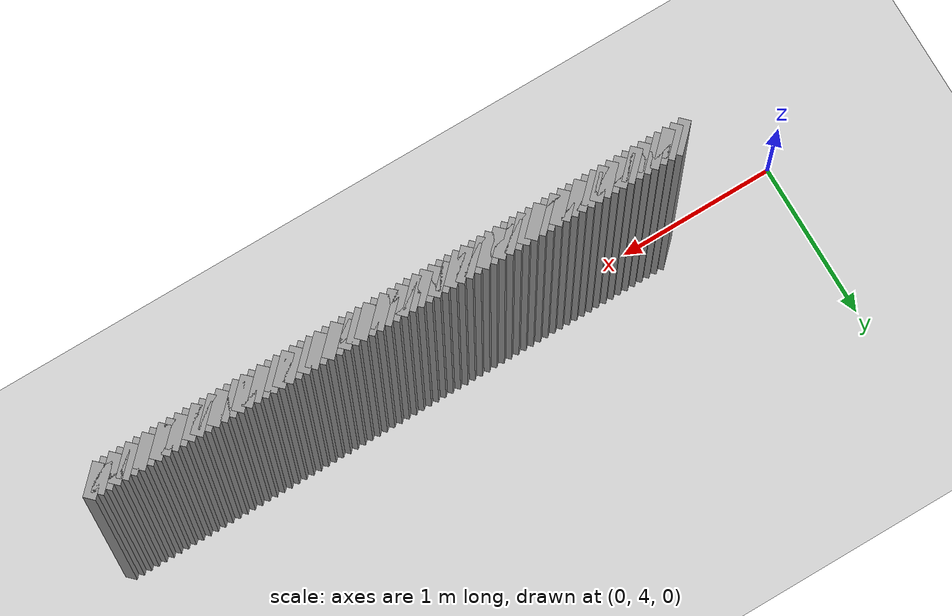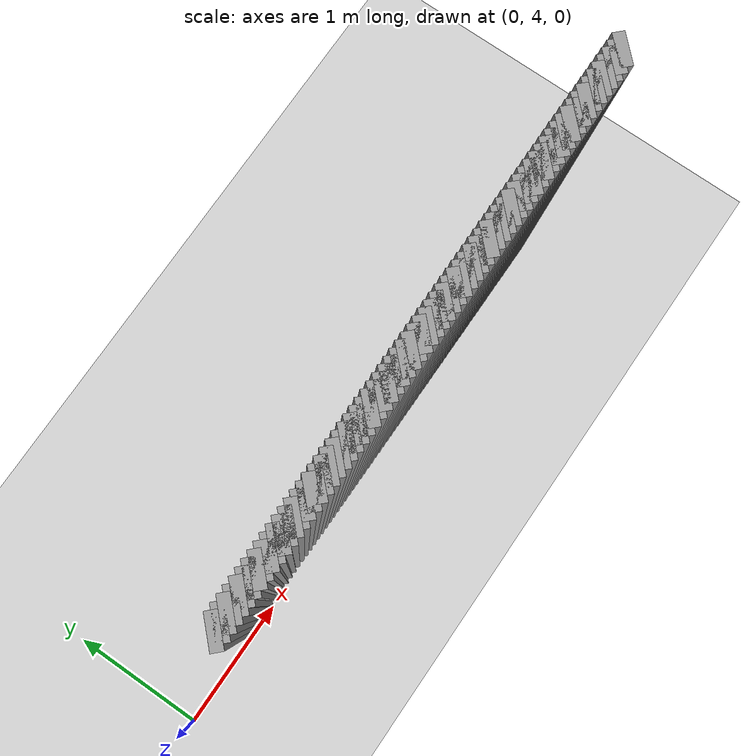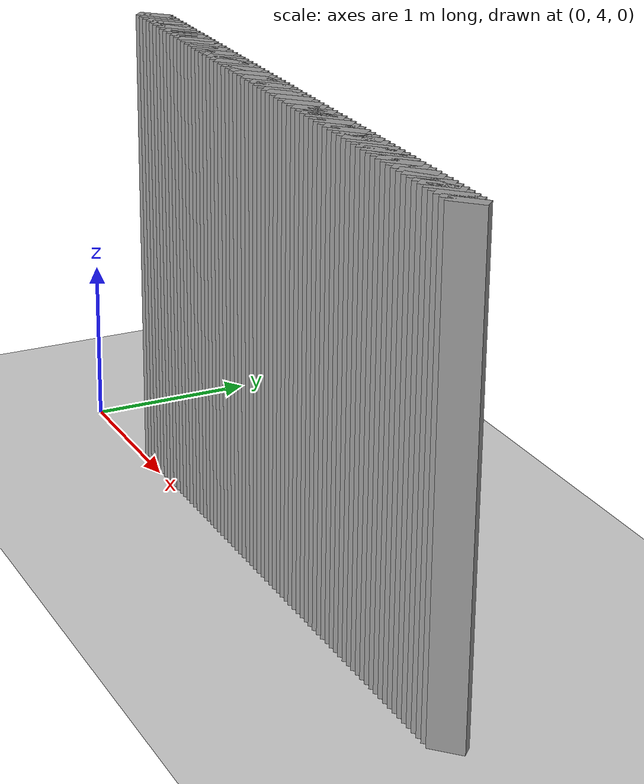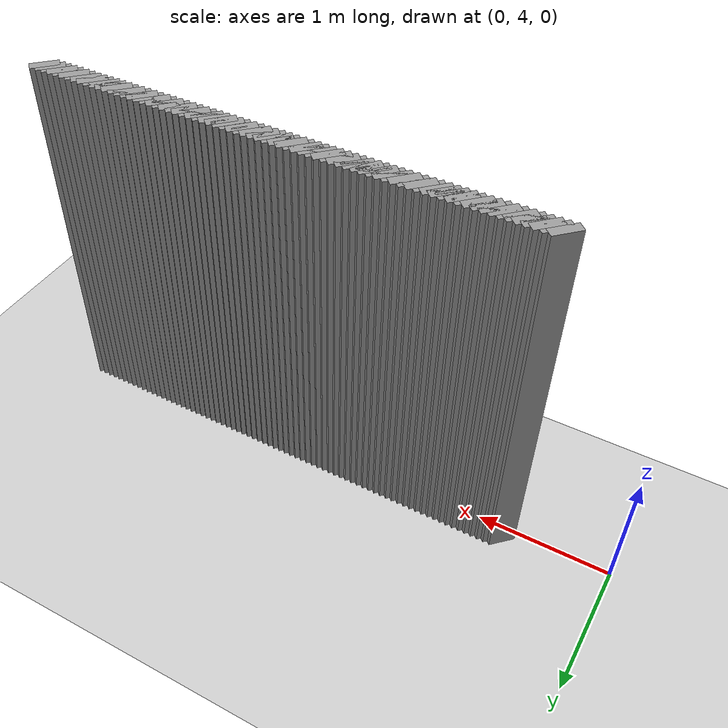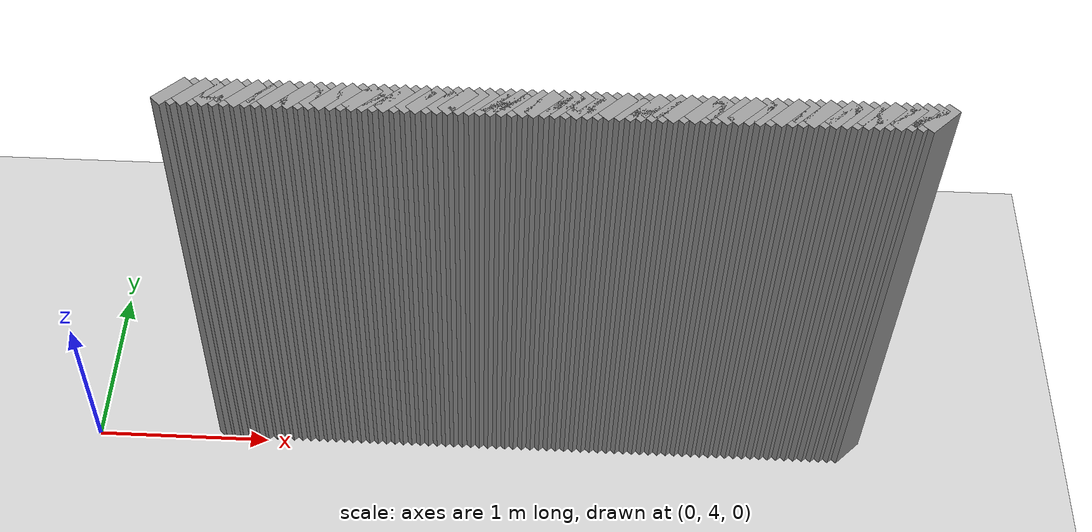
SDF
<sdf version="1.5">
 <world name="default">
  <include><uri>model://ground_plane</uri></include>
  <include><uri>model://sun</uri></include>
  <model name="grey_wall_2074">
   <static>1</static>
   <link name="link">
    <pose>0.8 4.1000000000000005  1.4 0 0 -0.7853981633974549</pose>
    <collision name="collision">
     <geometry><box><size>0.07071067811865529 .2  2.8</size></box></geometry>
    </collision>
    <visual name="visual">
     <cast_shadows>0</cast_shadows>
     <geometry><box><size>0.07071067811865529 .2  2.8</size></box></geometry>
     <material>
      <script>
       <uri>model://grey_wall/materials/scripts</uri>
       <uri>model://grey_wall/materials/textures</uri>
       <name>vrc/grey_wall</name>
      </script>
     </material>
    </visual>
   </link>
  </model>
  <model name="grey_wall_2075">
   <static>1</static>
   <link name="link">
    <pose>0.8500000000000001 4.1000000000000005  1.4 0 0 -0.7853981633974549</pose>
    <collision name="collision">
     <geometry><box><size>0.07071067811865529 .2  2.8</size></box></geometry>
    </collision>
    <visual name="visual">
     <cast_shadows>0</cast_shadows>
     <geometry><box><size>0.07071067811865529 .2  2.8</size></box></geometry>
     <material>
      <script>
       <uri>model://grey_wall/materials/scripts</uri>
       <uri>model://grey_wall/materials/textures</uri>
       <name>vrc/grey_wall</name>
      </script>
     </material>
    </visual>
   </link>
  </model>
  <model name="grey_wall_2076">
   <static>1</static>
   <link name="link">
    <pose>0.9 4.1000000000000005  1.4 0 0 -0.7853981633974549</pose>
    <collision name="collision">
     <geometry><box><size>0.07071067811865529 .2  2.8</size></box></geometry>
    </collision>
    <visual name="visual">
     <cast_shadows>0</cast_shadows>
     <geometry><box><size>0.07071067811865529 .2  2.8</size></box></geometry>
     <material>
      <script>
       <uri>model://grey_wall/materials/scripts</uri>
       <uri>model://grey_wall/materials/textures</uri>
       <name>vrc/grey_wall</name>
      </script>
     </material>
    </visual>
   </link>
  </model>
  <model name="grey_wall_2077">
   <static>1</static>
   <link name="link">
    <pose>0.9500000000000001 4.1000000000000005  1.4 0 0 -0.7853981633974549</pose>
    <collision name="collision">
     <geometry><box><size>0.07071067811865529 .2  2.8</size></box></geometry>
    </collision>
    <visual name="visual">
     <cast_shadows>0</cast_shadows>
     <geometry><box><size>0.07071067811865529 .2  2.8</size></box></geometry>
     <material>
      <script>
       <uri>model://grey_wall/materials/scripts</uri>
       <uri>model://grey_wall/materials/textures</uri>
       <name>vrc/grey_wall</name>
      </script>
     </material>
    </visual>
   </link>
  </model>
  <model name="grey_wall_2078">
   <static>1</static>
   <link name="link">
    <pose>1.0 4.1000000000000005  1.4 0 0 -0.785398163397456</pose>
    <collision name="collision">
     <geometry><box><size>0.07071067811865521 .2  2.8</size></box></geometry>
    </collision>
    <visual name="visual">
     <cast_shadows>0</cast_shadows>
     <geometry><box><size>0.07071067811865521 .2  2.8</size></box></geometry>
     <material>
      <script>
       <uri>model://grey_wall/materials/scripts</uri>
       <uri>model://grey_wall/materials/textures</uri>
       <name>vrc/grey_wall</name>
      </script>
     </material>
    </visual>
   </link>
  </model>
  <model name="grey_wall_2079">
   <static>1</static>
   <link name="link">
    <pose>1.05 4.1000000000000005  1.4 0 0 -0.7853981633974572</pose>
    <collision name="collision">
     <geometry><box><size>0.07071067811865513 .2  2.8</size></box></geometry>
    </collision>
    <visual name="visual">
     <cast_shadows>0</cast_shadows>
     <geometry><box><size>0.07071067811865513 .2  2.8</size></box></geometry>
     <material>
      <script>
       <uri>model://grey_wall/materials/scripts</uri>
       <uri>model://grey_wall/materials/textures</uri>
       <name>vrc/grey_wall</name>
      </script>
     </material>
    </visual>
   </link>
  </model>
  <model name="grey_wall_2080">
   <static>1</static>
   <link name="link">
    <pose>1.1 4.1000000000000005  1.4 0 0 -0.7853981633974572</pose>
    <collision name="collision">
     <geometry><box><size>0.07071067811865513 .2  2.8</size></box></geometry>
    </collision>
    <visual name="visual">
     <cast_shadows>0</cast_shadows>
     <geometry><box><size>0.07071067811865513 .2  2.8</size></box></geometry>
     <material>
      <script>
       <uri>model://grey_wall/materials/scripts</uri>
       <uri>model://grey_wall/materials/textures</uri>
       <name>vrc/grey_wall</name>
      </script>
     </material>
    </visual>
   </link>
  </model>
  <model name="grey_wall_2081">
   <static>1</static>
   <link name="link">
    <pose>1.1500000000000001 4.1000000000000005  1.4 0 0 -0.7853981633974572</pose>
    <collision name="collision">
     <geometry><box><size>0.07071067811865513 .2  2.8</size></box></geometry>
    </collision>
    <visual name="visual">
     <cast_shadows>0</cast_shadows>
     <geometry><box><size>0.07071067811865513 .2  2.8</size></box></geometry>
     <material>
      <script>
       <uri>model://grey_wall/materials/scripts</uri>
       <uri>model://grey_wall/materials/textures</uri>
       <name>vrc/grey_wall</name>
      </script>
     </material>
    </visual>
   </link>
  </model>
  <model name="grey_wall_2082">
   <static>1</static>
   <link name="link">
    <pose>1.2000000000000002 4.1000000000000005  1.4 0 0 -0.7853981633974572</pose>
    <collision name="collision">
     <geometry><box><size>0.07071067811865513 .2  2.8</size></box></geometry>
    </collision>
    <visual name="visual">
     <cast_shadows>0</cast_shadows>
     <geometry><box><size>0.07071067811865513 .2  2.8</size></box></geometry>
     <material>
      <script>
       <uri>model://grey_wall/materials/scripts</uri>
       <uri>model://grey_wall/materials/textures</uri>
       <name>vrc/grey_wall</name>
      </script>
     </material>
    </visual>
   </link>
  </model>
  <model name="grey_wall_2083">
   <static>1</static>
   <link name="link">
    <pose>1.25 4.1000000000000005  1.4 0 0 -0.7853981633974572</pose>
    <collision name="collision">
     <geometry><box><size>0.07071067811865513 .2  2.8</size></box></geometry>
    </collision>
    <visual name="visual">
     <cast_shadows>0</cast_shadows>
     <geometry><box><size>0.07071067811865513 .2  2.8</size></box></geometry>
     <material>
      <script>
       <uri>model://grey_wall/materials/scripts</uri>
       <uri>model://grey_wall/materials/textures</uri>
       <name>vrc/grey_wall</name>
      </script>
     </material>
    </visual>
   </link>
  </model>
  <model name="grey_wall_2084">
   <static>1</static>
   <link name="link">
    <pose>1.3 4.1000000000000005  1.4 0 0 -0.7853981633974572</pose>
    <collision name="collision">
     <geometry><box><size>0.07071067811865513 .2  2.8</size></box></geometry>
    </collision>
    <visual name="visual">
     <cast_shadows>0</cast_shadows>
     <geometry><box><size>0.07071067811865513 .2  2.8</size></box></geometry>
     <material>
      <script>
       <uri>model://grey_wall/materials/scripts</uri>
       <uri>model://grey_wall/materials/textures</uri>
       <name>vrc/grey_wall</name>
      </script>
     </material>
    </visual>
   </link>
  </model>
  <model name="grey_wall_2085">
   <static>1</static>
   <link name="link">
    <pose>1.35 4.1000000000000005  1.4 0 0 -0.7853981633974572</pose>
    <collision name="collision">
     <geometry><box><size>0.07071067811865513 .2  2.8</size></box></geometry>
    </collision>
    <visual name="visual">
     <cast_shadows>0</cast_shadows>
     <geometry><box><size>0.07071067811865513 .2  2.8</size></box></geometry>
     <material>
      <script>
       <uri>model://grey_wall/materials/scripts</uri>
       <uri>model://grey_wall/materials/textures</uri>
       <name>vrc/grey_wall</name>
      </script>
     </material>
    </visual>
   </link>
  </model>
  <model name="grey_wall_2086">
   <static>1</static>
   <link name="link">
    <pose>1.4000000000000001 4.1000000000000005  1.4 0 0 -0.7853981633974572</pose>
    <collision name="collision">
     <geometry><box><size>0.07071067811865513 .2  2.8</size></box></geometry>
    </collision>
    <visual name="visual">
     <cast_shadows>0</cast_shadows>
     <geometry><box><size>0.07071067811865513 .2  2.8</size></box></geometry>
     <material>
      <script>
       <uri>model://grey_wall/materials/scripts</uri>
       <uri>model://grey_wall/materials/textures</uri>
       <name>vrc/grey_wall</name>
      </script>
     </material>
    </visual>
   </link>
  </model>
  <model name="grey_wall_2087">
   <static>1</static>
   <link name="link">
    <pose>1.4500000000000002 4.1000000000000005  1.4 0 0 -0.7853981633974572</pose>
    <collision name="collision">
     <geometry><box><size>0.07071067811865513 .2  2.8</size></box></geometry>
    </collision>
    <visual name="visual">
     <cast_shadows>0</cast_shadows>
     <geometry><box><size>0.07071067811865513 .2  2.8</size></box></geometry>
     <material>
      <script>
       <uri>model://grey_wall/materials/scripts</uri>
       <uri>model://grey_wall/materials/textures</uri>
       <name>vrc/grey_wall</name>
      </script>
     </material>
    </visual>
   </link>
  </model>
  <model name="grey_wall_2088">
   <static>1</static>
   <link name="link">
    <pose>1.5 4.1000000000000005  1.4 0 0 -0.7853981633974572</pose>
    <collision name="collision">
     <geometry><box><size>0.07071067811865513 .2  2.8</size></box></geometry>
    </collision>
    <visual name="visual">
     <cast_shadows>0</cast_shadows>
     <geometry><box><size>0.07071067811865513 .2  2.8</size></box></geometry>
     <material>
      <script>
       <uri>model://grey_wall/materials/scripts</uri>
       <uri>model://grey_wall/materials/textures</uri>
       <name>vrc/grey_wall</name>
      </script>
     </material>
    </visual>
   </link>
  </model>
  <model name="grey_wall_2089">
   <static>1</static>
   <link name="link">
    <pose>1.55 4.1000000000000005  1.4 0 0 -0.7853981633974572</pose>
    <collision name="collision">
     <geometry><box><size>0.07071067811865513 .2  2.8</size></box></geometry>
    </collision>
    <visual name="visual">
     <cast_shadows>0</cast_shadows>
     <geometry><box><size>0.07071067811865513 .2  2.8</size></box></geometry>
     <material>
      <script>
       <uri>model://grey_wall/materials/scripts</uri>
       <uri>model://grey_wall/materials/textures</uri>
       <name>vrc/grey_wall</name>
      </script>
     </material>
    </visual>
   </link>
  </model>
  <model name="grey_wall_2090">
   <static>1</static>
   <link name="link">
    <pose>1.6 4.1000000000000005  1.4 0 0 -0.7853981633974572</pose>
    <collision name="collision">
     <geometry><box><size>0.07071067811865513 .2  2.8</size></box></geometry>
    </collision>
    <visual name="visual">
     <cast_shadows>0</cast_shadows>
     <geometry><box><size>0.07071067811865513 .2  2.8</size></box></geometry>
     <material>
      <script>
       <uri>model://grey_wall/materials/scripts</uri>
       <uri>model://grey_wall/materials/textures</uri>
       <name>vrc/grey_wall</name>
      </script>
     </material>
    </visual>
   </link>
  </model>
  <model name="grey_wall_2091">
   <static>1</static>
   <link name="link">
    <pose>1.6500000000000001 4.1000000000000005  1.4 0 0 -0.7853981633974572</pose>
    <collision name="collision">
     <geometry><box><size>0.07071067811865513 .2  2.8</size></box></geometry>
    </collision>
    <visual name="visual">
     <cast_shadows>0</cast_shadows>
     <geometry><box><size>0.07071067811865513 .2  2.8</size></box></geometry>
     <material>
      <script>
       <uri>model://grey_wall/materials/scripts</uri>
       <uri>model://grey_wall/materials/textures</uri>
       <name>vrc/grey_wall</name>
      </script>
     </material>
    </visual>
   </link>
  </model>
  <model name="grey_wall_2092">
   <static>1</static>
   <link name="link">
    <pose>1.7000000000000002 4.1000000000000005  1.4 0 0 -0.7853981633974572</pose>
    <collision name="collision">
     <geometry><box><size>0.07071067811865513 .2  2.8</size></box></geometry>
    </collision>
    <visual name="visual">
     <cast_shadows>0</cast_shadows>
     <geometry><box><size>0.07071067811865513 .2  2.8</size></box></geometry>
     <material>
      <script>
       <uri>model://grey_wall/materials/scripts</uri>
       <uri>model://grey_wall/materials/textures</uri>
       <name>vrc/grey_wall</name>
      </script>
     </material>
    </visual>
   </link>
  </model>
  <model name="grey_wall_2093">
   <static>1</static>
   <link name="link">
    <pose>1.75 4.1000000000000005  1.4 0 0 -0.7853981633974572</pose>
    <collision name="collision">
     <geometry><box><size>0.07071067811865513 .2  2.8</size></box></geometry>
    </collision>
    <visual name="visual">
     <cast_shadows>0</cast_shadows>
     <geometry><box><size>0.07071067811865513 .2  2.8</size></box></geometry>
     <material>
      <script>
       <uri>model://grey_wall/materials/scripts</uri>
       <uri>model://grey_wall/materials/textures</uri>
       <name>vrc/grey_wall</name>
      </script>
     </material>
    </visual>
   </link>
  </model>
  <model name="grey_wall_2094">
   <static>1</static>
   <link name="link">
    <pose>1.8 4.1000000000000005  1.4 0 0 -0.7853981633974572</pose>
    <collision name="collision">
     <geometry><box><size>0.07071067811865513 .2  2.8</size></box></geometry>
    </collision>
    <visual name="visual">
     <cast_shadows>0</cast_shadows>
     <geometry><box><size>0.07071067811865513 .2  2.8</size></box></geometry>
     <material>
      <script>
       <uri>model://grey_wall/materials/scripts</uri>
       <uri>model://grey_wall/materials/textures</uri>
       <name>vrc/grey_wall</name>
      </script>
     </material>
    </visual>
   </link>
  </model>
  <model name="grey_wall_2095">
   <static>1</static>
   <link name="link">
    <pose>1.85 4.1000000000000005  1.4 0 0 -0.7853981633974572</pose>
    <collision name="collision">
     <geometry><box><size>0.07071067811865513 .2  2.8</size></box></geometry>
    </collision>
    <visual name="visual">
     <cast_shadows>0</cast_shadows>
     <geometry><box><size>0.07071067811865513 .2  2.8</size></box></geometry>
     <material>
      <script>
       <uri>model://grey_wall/materials/scripts</uri>
       <uri>model://grey_wall/materials/textures</uri>
       <name>vrc/grey_wall</name>
      </script>
     </material>
    </visual>
   </link>
  </model>
  <model name="grey_wall_2096">
   <static>1</static>
   <link name="link">
    <pose>1.9000000000000001 4.1000000000000005  1.4 0 0 -0.7853981633974572</pose>
    <collision name="collision">
     <geometry><box><size>0.07071067811865513 .2  2.8</size></box></geometry>
    </collision>
    <visual name="visual">
     <cast_shadows>0</cast_shadows>
     <geometry><box><size>0.07071067811865513 .2  2.8</size></box></geometry>
     <material>
      <script>
       <uri>model://grey_wall/materials/scripts</uri>
       <uri>model://grey_wall/materials/textures</uri>
       <name>vrc/grey_wall</name>
      </script>
     </material>
    </visual>
   </link>
  </model>
  <model name="grey_wall_2097">
   <static>1</static>
   <link name="link">
    <pose>1.9500000000000002 4.1000000000000005  1.4 0 0 -0.7853981633974572</pose>
    <collision name="collision">
     <geometry><box><size>0.07071067811865513 .2  2.8</size></box></geometry>
    </collision>
    <visual name="visual">
     <cast_shadows>0</cast_shadows>
     <geometry><box><size>0.07071067811865513 .2  2.8</size></box></geometry>
     <material>
      <script>
       <uri>model://grey_wall/materials/scripts</uri>
       <uri>model://grey_wall/materials/textures</uri>
       <name>vrc/grey_wall</name>
      </script>
     </material>
    </visual>
   </link>
  </model>
  <model name="grey_wall_2098">
   <static>1</static>
   <link name="link">
    <pose>2.0 4.1000000000000005  1.4 0 0 -0.7853981633974572</pose>
    <collision name="collision">
     <geometry><box><size>0.07071067811865513 .2  2.8</size></box></geometry>
    </collision>
    <visual name="visual">
     <cast_shadows>0</cast_shadows>
     <geometry><box><size>0.07071067811865513 .2  2.8</size></box></geometry>
     <material>
      <script>
       <uri>model://grey_wall/materials/scripts</uri>
       <uri>model://grey_wall/materials/textures</uri>
       <name>vrc/grey_wall</name>
      </script>
     </material>
    </visual>
   </link>
  </model>
  <model name="grey_wall_2099">
   <static>1</static>
   <link name="link">
    <pose>2.0500000000000003 4.1000000000000005  1.4 0 0 -0.7853981633974572</pose>
    <collision name="collision">
     <geometry><box><size>0.07071067811865513 .2  2.8</size></box></geometry>
    </collision>
    <visual name="visual">
     <cast_shadows>0</cast_shadows>
     <geometry><box><size>0.07071067811865513 .2  2.8</size></box></geometry>
     <material>
      <script>
       <uri>model://grey_wall/materials/scripts</uri>
       <uri>model://grey_wall/materials/textures</uri>
       <name>vrc/grey_wall</name>
      </script>
     </material>
    </visual>
   </link>
  </model>
  <model name="grey_wall_2100">
   <static>1</static>
   <link name="link">
    <pose>2.1 4.1000000000000005  1.4 0 0 -0.7853981633974572</pose>
    <collision name="collision">
     <geometry><box><size>0.07071067811865513 .2  2.8</size></box></geometry>
    </collision>
    <visual name="visual">
     <cast_shadows>0</cast_shadows>
     <geometry><box><size>0.07071067811865513 .2  2.8</size></box></geometry>
     <material>
      <script>
       <uri>model://grey_wall/materials/scripts</uri>
       <uri>model://grey_wall/materials/textures</uri>
       <name>vrc/grey_wall</name>
      </script>
     </material>
    </visual>
   </link>
  </model>
  <model name="grey_wall_2101">
   <static>1</static>
   <link name="link">
    <pose>2.15 4.1000000000000005  1.4 0 0 -0.7853981633974572</pose>
    <collision name="collision">
     <geometry><box><size>0.07071067811865513 .2  2.8</size></box></geometry>
    </collision>
    <visual name="visual">
     <cast_shadows>0</cast_shadows>
     <geometry><box><size>0.07071067811865513 .2  2.8</size></box></geometry>
     <material>
      <script>
       <uri>model://grey_wall/materials/scripts</uri>
       <uri>model://grey_wall/materials/textures</uri>
       <name>vrc/grey_wall</name>
      </script>
     </material>
    </visual>
   </link>
  </model>
  <model name="grey_wall_2102">
   <static>1</static>
   <link name="link">
    <pose>2.2 4.1000000000000005  1.4 0 0 -0.7853981633974572</pose>
    <collision name="collision">
     <geometry><box><size>0.07071067811865513 .2  2.8</size></box></geometry>
    </collision>
    <visual name="visual">
     <cast_shadows>0</cast_shadows>
     <geometry><box><size>0.07071067811865513 .2  2.8</size></box></geometry>
     <material>
      <script>
       <uri>model://grey_wall/materials/scripts</uri>
       <uri>model://grey_wall/materials/textures</uri>
       <name>vrc/grey_wall</name>
      </script>
     </material>
    </visual>
   </link>
  </model>
  <model name="grey_wall_2103">
   <static>1</static>
   <link name="link">
    <pose>2.25 4.1000000000000005  1.4 0 0 -0.7853981633974572</pose>
    <collision name="collision">
     <geometry><box><size>0.07071067811865513 .2  2.8</size></box></geometry>
    </collision>
    <visual name="visual">
     <cast_shadows>0</cast_shadows>
     <geometry><box><size>0.07071067811865513 .2  2.8</size></box></geometry>
     <material>
      <script>
       <uri>model://grey_wall/materials/scripts</uri>
       <uri>model://grey_wall/materials/textures</uri>
       <name>vrc/grey_wall</name>
      </script>
     </material>
    </visual>
   </link>
  </model>
  <model name="grey_wall_2104">
   <static>1</static>
   <link name="link">
    <pose>2.3000000000000003 4.1000000000000005  1.4 0 0 -0.7853981633974572</pose>
    <collision name="collision">
     <geometry><box><size>0.07071067811865513 .2  2.8</size></box></geometry>
    </collision>
    <visual name="visual">
     <cast_shadows>0</cast_shadows>
     <geometry><box><size>0.07071067811865513 .2  2.8</size></box></geometry>
     <material>
      <script>
       <uri>model://grey_wall/materials/scripts</uri>
       <uri>model://grey_wall/materials/textures</uri>
       <name>vrc/grey_wall</name>
      </script>
     </material>
    </visual>
   </link>
  </model>
  <model name="grey_wall_2105">
   <static>1</static>
   <link name="link">
    <pose>2.35 4.1000000000000005  1.4 0 0 -0.7853981633974572</pose>
    <collision name="collision">
     <geometry><box><size>0.07071067811865513 .2  2.8</size></box></geometry>
    </collision>
    <visual name="visual">
     <cast_shadows>0</cast_shadows>
     <geometry><box><size>0.07071067811865513 .2  2.8</size></box></geometry>
     <material>
      <script>
       <uri>model://grey_wall/materials/scripts</uri>
       <uri>model://grey_wall/materials/textures</uri>
       <name>vrc/grey_wall</name>
      </script>
     </material>
    </visual>
   </link>
  </model>
  <model name="grey_wall_2106">
   <static>1</static>
   <link name="link">
    <pose>2.4000000000000004 4.1000000000000005  1.4 0 0 -0.7853981633974572</pose>
    <collision name="collision">
     <geometry><box><size>0.07071067811865513 .2  2.8</size></box></geometry>
    </collision>
    <visual name="visual">
     <cast_shadows>0</cast_shadows>
     <geometry><box><size>0.07071067811865513 .2  2.8</size></box></geometry>
     <material>
      <script>
       <uri>model://grey_wall/materials/scripts</uri>
       <uri>model://grey_wall/materials/textures</uri>
       <name>vrc/grey_wall</name>
      </script>
     </material>
    </visual>
   </link>
  </model>
  <model name="grey_wall_2107">
   <static>1</static>
   <link name="link">
    <pose>2.45 4.1000000000000005  1.4 0 0 -0.7853981633974572</pose>
    <collision name="collision">
     <geometry><box><size>0.07071067811865513 .2  2.8</size></box></geometry>
    </collision>
    <visual name="visual">
     <cast_shadows>0</cast_shadows>
     <geometry><box><size>0.07071067811865513 .2  2.8</size></box></geometry>
     <material>
      <script>
       <uri>model://grey_wall/materials/scripts</uri>
       <uri>model://grey_wall/materials/textures</uri>
       <name>vrc/grey_wall</name>
      </script>
     </material>
    </visual>
   </link>
  </model>
  <model name="grey_wall_2108">
   <static>1</static>
   <link name="link">
    <pose>2.5 4.1000000000000005  1.4 0 0 -0.7853981633974572</pose>
    <collision name="collision">
     <geometry><box><size>0.07071067811865513 .2  2.8</size></box></geometry>
    </collision>
    <visual name="visual">
     <cast_shadows>0</cast_shadows>
     <geometry><box><size>0.07071067811865513 .2  2.8</size></box></geometry>
     <material>
      <script>
       <uri>model://grey_wall/materials/scripts</uri>
       <uri>model://grey_wall/materials/textures</uri>
       <name>vrc/grey_wall</name>
      </script>
     </material>
    </visual>
   </link>
  </model>
  <model name="grey_wall_2109">
   <static>1</static>
   <link name="link">
    <pose>2.5500000000000003 4.1000000000000005  1.4 0 0 -0.7853981633974572</pose>
    <collision name="collision">
     <geometry><box><size>0.07071067811865513 .2  2.8</size></box></geometry>
    </collision>
    <visual name="visual">
     <cast_shadows>0</cast_shadows>
     <geometry><box><size>0.07071067811865513 .2  2.8</size></box></geometry>
     <material>
      <script>
       <uri>model://grey_wall/materials/scripts</uri>
       <uri>model://grey_wall/materials/textures</uri>
       <name>vrc/grey_wall</name>
      </script>
     </material>
    </visual>
   </link>
  </model>
  <model name="grey_wall_2110">
   <static>1</static>
   <link name="link">
    <pose>2.6 4.1000000000000005  1.4 0 0 -0.7853981633974572</pose>
    <collision name="collision">
     <geometry><box><size>0.07071067811865513 .2  2.8</size></box></geometry>
    </collision>
    <visual name="visual">
     <cast_shadows>0</cast_shadows>
     <geometry><box><size>0.07071067811865513 .2  2.8</size></box></geometry>
     <material>
      <script>
       <uri>model://grey_wall/materials/scripts</uri>
       <uri>model://grey_wall/materials/textures</uri>
       <name>vrc/grey_wall</name>
      </script>
     </material>
    </visual>
   </link>
  </model>
  <model name="grey_wall_2111">
   <static>1</static>
   <link name="link">
    <pose>2.6500000000000004 4.1000000000000005  1.4 0 0 -0.7853981633974572</pose>
    <collision name="collision">
     <geometry><box><size>0.07071067811865513 .2  2.8</size></box></geometry>
    </collision>
    <visual name="visual">
     <cast_shadows>0</cast_shadows>
     <geometry><box><size>0.07071067811865513 .2  2.8</size></box></geometry>
     <material>
      <script>
       <uri>model://grey_wall/materials/scripts</uri>
       <uri>model://grey_wall/materials/textures</uri>
       <name>vrc/grey_wall</name>
      </script>
     </material>
    </visual>
   </link>
  </model>
  <model name="grey_wall_2112">
   <static>1</static>
   <link name="link">
    <pose>2.7 4.1000000000000005  1.4 0 0 -0.7853981633974572</pose>
    <collision name="collision">
     <geometry><box><size>0.07071067811865513 .2  2.8</size></box></geometry>
    </collision>
    <visual name="visual">
     <cast_shadows>0</cast_shadows>
     <geometry><box><size>0.07071067811865513 .2  2.8</size></box></geometry>
     <material>
      <script>
       <uri>model://grey_wall/materials/scripts</uri>
       <uri>model://grey_wall/materials/textures</uri>
       <name>vrc/grey_wall</name>
      </script>
     </material>
    </visual>
   </link>
  </model>
  <model name="grey_wall_2113">
   <static>1</static>
   <link name="link">
    <pose>2.75 4.1000000000000005  1.4 0 0 -0.7853981633974572</pose>
    <collision name="collision">
     <geometry><box><size>0.07071067811865513 .2  2.8</size></box></geometry>
    </collision>
    <visual name="visual">
     <cast_shadows>0</cast_shadows>
     <geometry><box><size>0.07071067811865513 .2  2.8</size></box></geometry>
     <material>
      <script>
       <uri>model://grey_wall/materials/scripts</uri>
       <uri>model://grey_wall/materials/textures</uri>
       <name>vrc/grey_wall</name>
      </script>
     </material>
    </visual>
   </link>
  </model>
  <model name="grey_wall_2114">
   <static>1</static>
   <link name="link">
    <pose>2.8000000000000003 4.1000000000000005  1.4 0 0 -0.7853981633974572</pose>
    <collision name="collision">
     <geometry><box><size>0.07071067811865513 .2  2.8</size></box></geometry>
    </collision>
    <visual name="visual">
     <cast_shadows>0</cast_shadows>
     <geometry><box><size>0.07071067811865513 .2  2.8</size></box></geometry>
     <material>
      <script>
       <uri>model://grey_wall/materials/scripts</uri>
       <uri>model://grey_wall/materials/textures</uri>
       <name>vrc/grey_wall</name>
      </script>
     </material>
    </visual>
   </link>
  </model>
  <model name="grey_wall_2115">
   <static>1</static>
   <link name="link">
    <pose>2.85 4.1000000000000005  1.4 0 0 -0.7853981633974572</pose>
    <collision name="collision">
     <geometry><box><size>0.07071067811865513 .2  2.8</size></box></geometry>
    </collision>
    <visual name="visual">
     <cast_shadows>0</cast_shadows>
     <geometry><box><size>0.07071067811865513 .2  2.8</size></box></geometry>
     <material>
      <script>
       <uri>model://grey_wall/materials/scripts</uri>
       <uri>model://grey_wall/materials/textures</uri>
       <name>vrc/grey_wall</name>
      </script>
     </material>
    </visual>
   </link>
  </model>
  <model name="grey_wall_2116">
   <static>1</static>
   <link name="link">
    <pose>2.9000000000000004 4.1000000000000005  1.4 0 0 -0.7853981633974572</pose>
    <collision name="collision">
     <geometry><box><size>0.07071067811865513 .2  2.8</size></box></geometry>
    </collision>
    <visual name="visual">
     <cast_shadows>0</cast_shadows>
     <geometry><box><size>0.07071067811865513 .2  2.8</size></box></geometry>
     <material>
      <script>
       <uri>model://grey_wall/materials/scripts</uri>
       <uri>model://grey_wall/materials/textures</uri>
       <name>vrc/grey_wall</name>
      </script>
     </material>
    </visual>
   </link>
  </model>
  <model name="grey_wall_2117">
   <static>1</static>
   <link name="link">
    <pose>2.95 4.1000000000000005  1.4 0 0 -0.7853981633974572</pose>
    <collision name="collision">
     <geometry><box><size>0.07071067811865513 .2  2.8</size></box></geometry>
    </collision>
    <visual name="visual">
     <cast_shadows>0</cast_shadows>
     <geometry><box><size>0.07071067811865513 .2  2.8</size></box></geometry>
     <material>
      <script>
       <uri>model://grey_wall/materials/scripts</uri>
       <uri>model://grey_wall/materials/textures</uri>
       <name>vrc/grey_wall</name>
      </script>
     </material>
    </visual>
   </link>
  </model>
  <model name="grey_wall_2118">
   <static>1</static>
   <link name="link">
    <pose>3.0 4.1000000000000005  1.4 0 0 -0.7853981633974572</pose>
    <collision name="collision">
     <geometry><box><size>0.07071067811865513 .2  2.8</size></box></geometry>
    </collision>
    <visual name="visual">
     <cast_shadows>0</cast_shadows>
     <geometry><box><size>0.07071067811865513 .2  2.8</size></box></geometry>
     <material>
      <script>
       <uri>model://grey_wall/materials/scripts</uri>
       <uri>model://grey_wall/materials/textures</uri>
       <name>vrc/grey_wall</name>
      </script>
     </material>
    </visual>
   </link>
  </model>
  <model name="grey_wall_2119">
   <static>1</static>
   <link name="link">
    <pose>3.0500000000000003 4.1000000000000005  1.4 0 0 -0.7853981633974572</pose>
    <collision name="collision">
     <geometry><box><size>0.07071067811865513 .2  2.8</size></box></geometry>
    </collision>
    <visual name="visual">
     <cast_shadows>0</cast_shadows>
     <geometry><box><size>0.07071067811865513 .2  2.8</size></box></geometry>
     <material>
      <script>
       <uri>model://grey_wall/materials/scripts</uri>
       <uri>model://grey_wall/materials/textures</uri>
       <name>vrc/grey_wall</name>
      </script>
     </material>
    </visual>
   </link>
  </model>
  <model name="grey_wall_2120">
   <static>1</static>
   <link name="link">
    <pose>3.1 4.1000000000000005  1.4 0 0 -0.7853981633974572</pose>
    <collision name="collision">
     <geometry><box><size>0.07071067811865513 .2  2.8</size></box></geometry>
    </collision>
    <visual name="visual">
     <cast_shadows>0</cast_shadows>
     <geometry><box><size>0.07071067811865513 .2  2.8</size></box></geometry>
     <material>
      <script>
       <uri>model://grey_wall/materials/scripts</uri>
       <uri>model://grey_wall/materials/textures</uri>
       <name>vrc/grey_wall</name>
      </script>
     </material>
    </visual>
   </link>
  </model>
  <model name="grey_wall_2121">
   <static>1</static>
   <link name="link">
    <pose>3.1500000000000004 4.1000000000000005  1.4 0 0 -0.7853981633974572</pose>
    <collision name="collision">
     <geometry><box><size>0.07071067811865513 .2  2.8</size></box></geometry>
    </collision>
    <visual name="visual">
     <cast_shadows>0</cast_shadows>
     <geometry><box><size>0.07071067811865513 .2  2.8</size></box></geometry>
     <material>
      <script>
       <uri>model://grey_wall/materials/scripts</uri>
       <uri>model://grey_wall/materials/textures</uri>
       <name>vrc/grey_wall</name>
      </script>
     </material>
    </visual>
   </link>
  </model>
  <model name="grey_wall_2122">
   <static>1</static>
   <link name="link">
    <pose>3.2 4.1000000000000005  1.4 0 0 -0.7853981633974572</pose>
    <collision name="collision">
     <geometry><box><size>0.07071067811865513 .2  2.8</size></box></geometry>
    </collision>
    <visual name="visual">
     <cast_shadows>0</cast_shadows>
     <geometry><box><size>0.07071067811865513 .2  2.8</size></box></geometry>
     <material>
      <script>
       <uri>model://grey_wall/materials/scripts</uri>
       <uri>model://grey_wall/materials/textures</uri>
       <name>vrc/grey_wall</name>
      </script>
     </material>
    </visual>
   </link>
  </model>
  <model name="grey_wall_2123">
   <static>1</static>
   <link name="link">
    <pose>3.25 4.1000000000000005  1.4 0 0 -0.7853981633974572</pose>
    <collision name="collision">
     <geometry><box><size>0.07071067811865513 .2  2.8</size></box></geometry>
    </collision>
    <visual name="visual">
     <cast_shadows>0</cast_shadows>
     <geometry><box><size>0.07071067811865513 .2  2.8</size></box></geometry>
     <material>
      <script>
       <uri>model://grey_wall/materials/scripts</uri>
       <uri>model://grey_wall/materials/textures</uri>
       <name>vrc/grey_wall</name>
      </script>
     </material>
    </visual>
   </link>
  </model>
  <model name="grey_wall_2124">
   <static>1</static>
   <link name="link">
    <pose>3.3000000000000003 4.1000000000000005  1.4 0 0 -0.7853981633974572</pose>
    <collision name="collision">
     <geometry><box><size>0.07071067811865513 .2  2.8</size></box></geometry>
    </collision>
    <visual name="visual">
     <cast_shadows>0</cast_shadows>
     <geometry><box><size>0.07071067811865513 .2  2.8</size></box></geometry>
     <material>
      <script>
       <uri>model://grey_wall/materials/scripts</uri>
       <uri>model://grey_wall/materials/textures</uri>
       <name>vrc/grey_wall</name>
      </script>
     </material>
    </visual>
   </link>
  </model>
  <model name="grey_wall_2125">
   <static>1</static>
   <link name="link">
    <pose>3.35 4.1000000000000005  1.4 0 0 -0.7853981633974572</pose>
    <collision name="collision">
     <geometry><box><size>0.07071067811865513 .2  2.8</size></box></geometry>
    </collision>
    <visual name="visual">
     <cast_shadows>0</cast_shadows>
     <geometry><box><size>0.07071067811865513 .2  2.8</size></box></geometry>
     <material>
      <script>
       <uri>model://grey_wall/materials/scripts</uri>
       <uri>model://grey_wall/materials/textures</uri>
       <name>vrc/grey_wall</name>
      </script>
     </material>
    </visual>
   </link>
  </model>
  <model name="grey_wall_2126">
   <static>1</static>
   <link name="link">
    <pose>3.4000000000000004 4.1000000000000005  1.4 0 0 -0.7853981633974572</pose>
    <collision name="collision">
     <geometry><box><size>0.07071067811865513 .2  2.8</size></box></geometry>
    </collision>
    <visual name="visual">
     <cast_shadows>0</cast_shadows>
     <geometry><box><size>0.07071067811865513 .2  2.8</size></box></geometry>
     <material>
      <script>
       <uri>model://grey_wall/materials/scripts</uri>
       <uri>model://grey_wall/materials/textures</uri>
       <name>vrc/grey_wall</name>
      </script>
     </material>
    </visual>
   </link>
  </model>
  <model name="grey_wall_2127">
   <static>1</static>
   <link name="link">
    <pose>3.45 4.1000000000000005  1.4 0 0 -0.7853981633974572</pose>
    <collision name="collision">
     <geometry><box><size>0.07071067811865513 .2  2.8</size></box></geometry>
    </collision>
    <visual name="visual">
     <cast_shadows>0</cast_shadows>
     <geometry><box><size>0.07071067811865513 .2  2.8</size></box></geometry>
     <material>
      <script>
       <uri>model://grey_wall/materials/scripts</uri>
       <uri>model://grey_wall/materials/textures</uri>
       <name>vrc/grey_wall</name>
      </script>
     </material>
    </visual>
   </link>
  </model>
  <model name="grey_wall_2128">
   <static>1</static>
   <link name="link">
    <pose>3.5 4.1000000000000005  1.4 0 0 -0.7853981633974572</pose>
    <collision name="collision">
     <geometry><box><size>0.07071067811865513 .2  2.8</size></box></geometry>
    </collision>
    <visual name="visual">
     <cast_shadows>0</cast_shadows>
     <geometry><box><size>0.07071067811865513 .2  2.8</size></box></geometry>
     <material>
      <script>
       <uri>model://grey_wall/materials/scripts</uri>
       <uri>model://grey_wall/materials/textures</uri>
       <name>vrc/grey_wall</name>
      </script>
     </material>
    </visual>
   </link>
  </model>
  <model name="grey_wall_2129">
   <static>1</static>
   <link name="link">
    <pose>3.5500000000000003 4.1000000000000005  1.4 0 0 -0.7853981633974572</pose>
    <collision name="collision">
     <geometry><box><size>0.07071067811865513 .2  2.8</size></box></geometry>
    </collision>
    <visual name="visual">
     <cast_shadows>0</cast_shadows>
     <geometry><box><size>0.07071067811865513 .2  2.8</size></box></geometry>
     <material>
      <script>
       <uri>model://grey_wall/materials/scripts</uri>
       <uri>model://grey_wall/materials/textures</uri>
       <name>vrc/grey_wall</name>
      </script>
     </material>
    </visual>
   </link>
  </model>
  <model name="grey_wall_2130">
   <static>1</static>
   <link name="link">
    <pose>3.6 4.1000000000000005  1.4 0 0 -0.7853981633974572</pose>
    <collision name="collision">
     <geometry><box><size>0.07071067811865513 .2  2.8</size></box></geometry>
    </collision>
    <visual name="visual">
     <cast_shadows>0</cast_shadows>
     <geometry><box><size>0.07071067811865513 .2  2.8</size></box></geometry>
     <material>
      <script>
       <uri>model://grey_wall/materials/scripts</uri>
       <uri>model://grey_wall/materials/textures</uri>
       <name>vrc/grey_wall</name>
      </script>
     </material>
    </visual>
   </link>
  </model>
  <model name="grey_wall_2131">
   <static>1</static>
   <link name="link">
    <pose>3.6500000000000004 4.1000000000000005  1.4 0 0 -0.7853981633974572</pose>
    <collision name="collision">
     <geometry><box><size>0.07071067811865513 .2  2.8</size></box></geometry>
    </collision>
    <visual name="visual">
     <cast_shadows>0</cast_shadows>
     <geometry><box><size>0.07071067811865513 .2  2.8</size></box></geometry>
     <material>
      <script>
       <uri>model://grey_wall/materials/scripts</uri>
       <uri>model://grey_wall/materials/textures</uri>
       <name>vrc/grey_wall</name>
      </script>
     </material>
    </visual>
   </link>
  </model>
  <model name="grey_wall_2132">
   <static>1</static>
   <link name="link">
    <pose>3.7 4.1000000000000005  1.4 0 0 -0.7853981633974572</pose>
    <collision name="collision">
     <geometry><box><size>0.07071067811865513 .2  2.8</size></box></geometry>
    </collision>
    <visual name="visual">
     <cast_shadows>0</cast_shadows>
     <geometry><box><size>0.07071067811865513 .2  2.8</size></box></geometry>
     <material>
      <script>
       <uri>model://grey_wall/materials/scripts</uri>
       <uri>model://grey_wall/materials/textures</uri>
       <name>vrc/grey_wall</name>
      </script>
     </material>
    </visual>
   </link>
  </model>
  <model name="grey_wall_2133">
   <static>1</static>
   <link name="link">
    <pose>3.75 4.1000000000000005  1.4 0 0 -0.7853981633974572</pose>
    <collision name="collision">
     <geometry><box><size>0.07071067811865513 .2  2.8</size></box></geometry>
    </collision>
    <visual name="visual">
     <cast_shadows>0</cast_shadows>
     <geometry><box><size>0.07071067811865513 .2  2.8</size></box></geometry>
     <material>
      <script>
       <uri>model://grey_wall/materials/scripts</uri>
       <uri>model://grey_wall/materials/textures</uri>
       <name>vrc/grey_wall</name>
      </script>
     </material>
    </visual>
   </link>
  </model>
  <model name="grey_wall_2134">
   <static>1</static>
   <link name="link">
    <pose>3.8000000000000003 4.1000000000000005  1.4 0 0 -0.7853981633974572</pose>
    <collision name="collision">
     <geometry><box><size>0.07071067811865513 .2  2.8</size></box></geometry>
    </collision>
    <visual name="visual">
     <cast_shadows>0</cast_shadows>
     <geometry><box><size>0.07071067811865513 .2  2.8</size></box></geometry>
     <material>
      <script>
       <uri>model://grey_wall/materials/scripts</uri>
       <uri>model://grey_wall/materials/textures</uri>
       <name>vrc/grey_wall</name>
      </script>
     </material>
    </visual>
   </link>
  </model>
  <model name="grey_wall_2135">
   <static>1</static>
   <link name="link">
    <pose>3.85 4.1000000000000005  1.4 0 0 -0.7853981633974572</pose>
    <collision name="collision">
     <geometry><box><size>0.07071067811865513 .2  2.8</size></box></geometry>
    </collision>
    <visual name="visual">
     <cast_shadows>0</cast_shadows>
     <geometry><box><size>0.07071067811865513 .2  2.8</size></box></geometry>
     <material>
      <script>
       <uri>model://grey_wall/materials/scripts</uri>
       <uri>model://grey_wall/materials/textures</uri>
       <name>vrc/grey_wall</name>
      </script>
     </material>
    </visual>
   </link>
  </model>
  <model name="grey_wall_2136">
   <static>1</static>
   <link name="link">
    <pose>3.9000000000000004 4.1000000000000005  1.4 0 0 -0.7853981633974572</pose>
    <collision name="collision">
     <geometry><box><size>0.07071067811865513 .2  2.8</size></box></geometry>
    </collision>
    <visual name="visual">
     <cast_shadows>0</cast_shadows>
     <geometry><box><size>0.07071067811865513 .2  2.8</size></box></geometry>
     <material>
      <script>
       <uri>model://grey_wall/materials/scripts</uri>
       <uri>model://grey_wall/materials/textures</uri>
       <name>vrc/grey_wall</name>
      </script>
     </material>
    </visual>
   </link>
  </model>
  <model name="grey_wall_2137">
   <static>1</static>
   <link name="link">
    <pose>3.95 4.1000000000000005  1.4 0 0 -0.7853981633974572</pose>
    <collision name="collision">
     <geometry><box><size>0.07071067811865513 .2  2.8</size></box></geometry>
    </collision>
    <visual name="visual">
     <cast_shadows>0</cast_shadows>
     <geometry><box><size>0.07071067811865513 .2  2.8</size></box></geometry>
     <material>
      <script>
       <uri>model://grey_wall/materials/scripts</uri>
       <uri>model://grey_wall/materials/textures</uri>
       <name>vrc/grey_wall</name>
      </script>
     </material>
    </visual>
   </link>
  </model>
  <model name="grey_wall_2138">
   <static>1</static>
   <link name="link">
    <pose>4.0 4.1000000000000005  1.4 0 0 -0.7853981633974527</pose>
    <collision name="collision">
     <geometry><box><size>0.07071067811865545 .2  2.8</size></box></geometry>
    </collision>
    <visual name="visual">
     <cast_shadows>0</cast_shadows>
     <geometry><box><size>0.07071067811865545 .2  2.8</size></box></geometry>
     <material>
      <script>
       <uri>model://grey_wall/materials/scripts</uri>
       <uri>model://grey_wall/materials/textures</uri>
       <name>vrc/grey_wall</name>
      </script>
     </material>
    </visual>
   </link>
  </model>
  <model name="grey_wall_2139">
   <static>1</static>
   <link name="link">
    <pose>4.05 4.1000000000000005  1.4 0 0 -0.7853981633974483</pose>
    <collision name="collision">
     <geometry><box><size>0.07071067811865576 .2  2.8</size></box></geometry>
    </collision>
    <visual name="visual">
     <cast_shadows>0</cast_shadows>
     <geometry><box><size>0.07071067811865576 .2  2.8</size></box></geometry>
     <material>
      <script>
       <uri>model://grey_wall/materials/scripts</uri>
       <uri>model://grey_wall/materials/textures</uri>
       <name>vrc/grey_wall</name>
      </script>
     </material>
    </visual>
   </link>
  </model>
  <model name="grey_wall_2140">
   <static>1</static>
   <link name="link">
    <pose>4.1000000000000005 4.1000000000000005  1.4 0 0 -0.7853981633974483</pose>
    <collision name="collision">
     <geometry><box><size>0.07071067811865576 .2  2.8</size></box></geometry>
    </collision>
    <visual name="visual">
     <cast_shadows>0</cast_shadows>
     <geometry><box><size>0.07071067811865576 .2  2.8</size></box></geometry>
     <material>
      <script>
       <uri>model://grey_wall/materials/scripts</uri>
       <uri>model://grey_wall/materials/textures</uri>
       <name>vrc/grey_wall</name>
      </script>
     </material>
    </visual>
   </link>
  </model>
  <model name="grey_wall_2141">
   <static>1</static>
   <link name="link">
    <pose>4.15 4.1000000000000005  1.4 0 0 -0.7853981633974483</pose>
    <collision name="collision">
     <geometry><box><size>0.07071067811865576 .2  2.8</size></box></geometry>
    </collision>
    <visual name="visual">
     <cast_shadows>0</cast_shadows>
     <geometry><box><size>0.07071067811865576 .2  2.8</size></box></geometry>
     <material>
      <script>
       <uri>model://grey_wall/materials/scripts</uri>
       <uri>model://grey_wall/materials/textures</uri>
       <name>vrc/grey_wall</name>
      </script>
     </material>
    </visual>
   </link>
  </model>
  <model name="grey_wall_2142">
   <static>1</static>
   <link name="link">
    <pose>4.2 4.1000000000000005  1.4 0 0 -0.7853981633974483</pose>
    <collision name="collision">
     <geometry><box><size>0.07071067811865576 .2  2.8</size></box></geometry>
    </collision>
    <visual name="visual">
     <cast_shadows>0</cast_shadows>
     <geometry><box><size>0.07071067811865576 .2  2.8</size></box></geometry>
     <material>
      <script>
       <uri>model://grey_wall/materials/scripts</uri>
       <uri>model://grey_wall/materials/textures</uri>
       <name>vrc/grey_wall</name>
      </script>
     </material>
    </visual>
   </link>
  </model>
  <model name="grey_wall_2143">
   <static>1</static>
   <link name="link">
    <pose>4.25 4.1000000000000005  1.4 0 0 -0.7853981633974483</pose>
    <collision name="collision">
     <geometry><box><size>0.07071067811865576 .2  2.8</size></box></geometry>
    </collision>
    <visual name="visual">
     <cast_shadows>0</cast_shadows>
     <geometry><box><size>0.07071067811865576 .2  2.8</size></box></geometry>
     <material>
      <script>
       <uri>model://grey_wall/materials/scripts</uri>
       <uri>model://grey_wall/materials/textures</uri>
       <name>vrc/grey_wall</name>
      </script>
     </material>
    </visual>
   </link>
  </model>
  <model name="grey_wall_2144">
   <static>1</static>
   <link name="link">
    <pose>4.3 4.1000000000000005  1.4 0 0 -0.7853981633974483</pose>
    <collision name="collision">
     <geometry><box><size>0.07071067811865576 .2  2.8</size></box></geometry>
    </collision>
    <visual name="visual">
     <cast_shadows>0</cast_shadows>
     <geometry><box><size>0.07071067811865576 .2  2.8</size></box></geometry>
     <material>
      <script>
       <uri>model://grey_wall/materials/scripts</uri>
       <uri>model://grey_wall/materials/textures</uri>
       <name>vrc/grey_wall</name>
      </script>
     </material>
    </visual>
   </link>
  </model>
  <model name="grey_wall_2145">
   <static>1</static>
   <link name="link">
    <pose>4.3500000000000005 4.1000000000000005  1.4 0 0 -0.7853981633974483</pose>
    <collision name="collision">
     <geometry><box><size>0.07071067811865576 .2  2.8</size></box></geometry>
    </collision>
    <visual name="visual">
     <cast_shadows>0</cast_shadows>
     <geometry><box><size>0.07071067811865576 .2  2.8</size></box></geometry>
     <material>
      <script>
       <uri>model://grey_wall/materials/scripts</uri>
       <uri>model://grey_wall/materials/textures</uri>
       <name>vrc/grey_wall</name>
      </script>
     </material>
    </visual>
   </link>
  </model>
  <model name="grey_wall_2146">
   <static>1</static>
   <link name="link">
    <pose>4.4 4.1000000000000005  1.4 0 0 -0.7853981633974483</pose>
    <collision name="collision">
     <geometry><box><size>0.07071067811865576 .2  2.8</size></box></geometry>
    </collision>
    <visual name="visual">
     <cast_shadows>0</cast_shadows>
     <geometry><box><size>0.07071067811865576 .2  2.8</size></box></geometry>
     <material>
      <script>
       <uri>model://grey_wall/materials/scripts</uri>
       <uri>model://grey_wall/materials/textures</uri>
       <name>vrc/grey_wall</name>
      </script>
     </material>
    </visual>
   </link>
  </model>
 </world>
</sdf>
